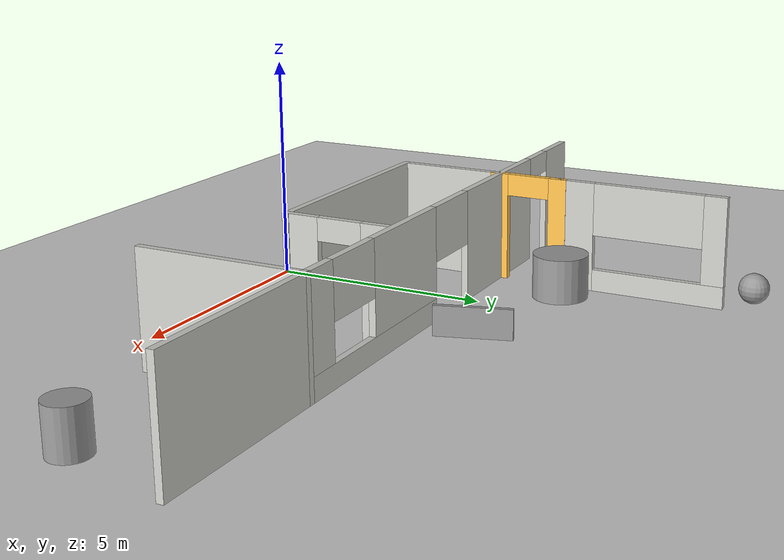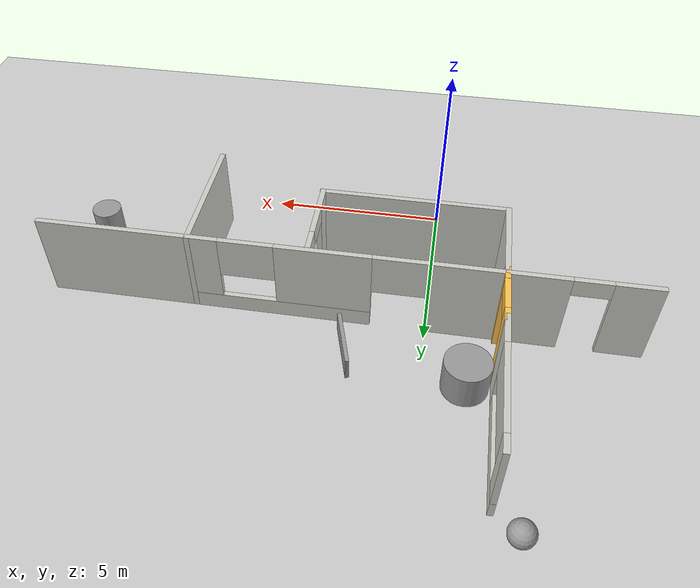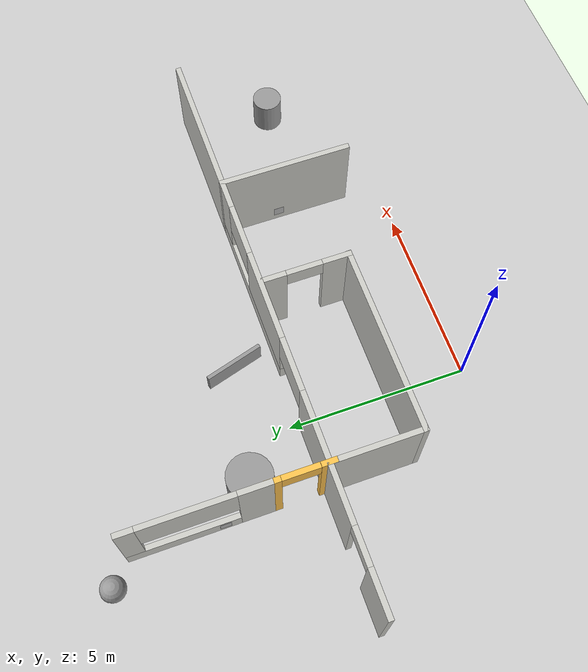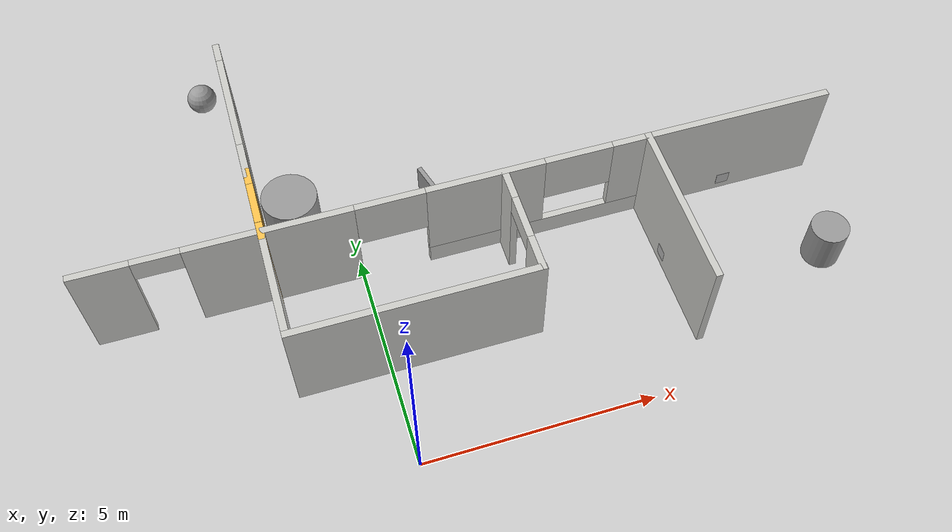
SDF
<sdf version="1.6">
 <world name="default">
  <model name="ground_plane">
   <static>1</static>
   <link name="link">
    <collision name="collision">
     <geometry><plane><normal>0 0 1</normal><size>100 100</size></plane></geometry>
     <surface>
      <contact><collide_bitmask>65535</collide_bitmask></contact>
      <friction><ode><mu>100</mu><mu2>50</mu2></ode></friction>
     </surface>
    </collision>
    <visual name="visual">
     <cast_shadows>0</cast_shadows>
     <geometry><plane><normal>0 0 1</normal><size>100 100</size></plane></geometry>
     <material>
      <script><uri>file://media/materials/scripts/gazebo.material</uri><name>Gazebo/Grey</name></script>
     </material>
    </visual>
   </link>
  </model>
  <model name="Apriltag36_11_00000">
   <link name="main">
    <visual name="main_Visual">
     <geometry><box><size>0.3 0.3 0.01</size></box></geometry>
     <material>
      <script>
       <uri>model://Apriltag36_11_00000/materials/scripts</uri>
       <uri>model://Apriltag36_11_00000/materials/textures</uri>
       <name>Apriltag36_11_00000</name>
      </script>
     </material>
    </visual>
   </link>
   <static>1</static>
   <pose>8.46473 4.57794 0.348215 1.5708 -0 0</pose>
  </model>
  <model name="Apriltag36_11_00004">
   <link name="main">
    <visual name="main_Visual">
     <geometry><box><size>0.3 0.3 0.01</size></box></geometry>
     <material>
      <script>
       <uri>model://Apriltag36_11_00004/materials/scripts</uri>
       <uri>model://Apriltag36_11_00004/materials/textures</uri>
       <name>Apriltag36_11_00004</name>
      </script>
     </material>
    </visual>
   </link>
   <static>1</static>
   <pose>6.34011 3.08655 0.344728 1.5708 0 -1.5708</pose>
  </model>
  <model name="Apriltag36_11_00006">
   <link name="main">
    <visual name="main_Visual">
     <geometry><box><size>0.3 0.3 0.01</size></box></geometry>
     <material>
      <script>
       <uri>model://Apriltag36_11_00006/materials/scripts</uri>
       <uri>model://Apriltag36_11_00006/materials/textures</uri>
       <name>Apriltag36_11_00006</name>
      </script>
     </material>
    </visual>
   </link>
   <static>1</static>
   <pose>-1.99049 7.40747 0.301894 1.5708 0 -1.5708</pose>
  </model>
  <model name="Apriltag36_11_00010">
   <link name="main">
    <visual name="main_Visual">
     <geometry><box><size>0.3 0.3 0.01</size></box></geometry>
     <material>
      <script>
       <uri>model://Apriltag36_11_00010/materials/scripts</uri>
       <uri>model://Apriltag36_11_00010/materials/textures</uri>
       <name>Apriltag36_11_00010</name>
      </script>
     </material>
    </visual>
   </link>
   <static>1</static>
   <pose>-1.82062 2.8418 0.279698 1.5708 -0 1.5708</pose>
  </model>
  <model name="House2">
   <link name="Wall_25">
    <pose>0.49533 1.04331 0 0 -0 0</pose>
    <inertial>
     <mass>1</mass>
     <inertia><ixx>1</ixx><ixy>0</ixy><ixz>0</ixz><iyy>1</iyy><iyz>0</iyz><izz>1</izz></inertia>
    </inertial>
    <visual name="Wall_25_Visual_4">
     <pose>5.67756 0 1.5 0 -0 0</pose>
     <geometry><box><size>0.894875 0.15 2</size></box></geometry>
     <material>
      <script><uri>file://media/materials/scripts/gazebo.material</uri><name>Gazebo/CeilingTiled</name></script>
      <ambient>1 0.765 0.306 1</ambient>
      <shader type="vertex"><normal_map>__default__</normal_map></shader>
      <diffuse>1 1 1 1</diffuse>
      <specular>0 0 0 1</specular>
      <emissive>0 0 0 1</emissive>
     </material>
     <meta><layer>0</layer></meta>
    </visual>
    <visual name="Wall_25_Visual_0">
     <pose>-5.49965 0 1.25 0 -0 0</pose>
     <geometry><box><size>1.25071 0.15 2.5</size></box></geometry>
     <material>
      <script><uri>file://media/materials/scripts/gazebo.material</uri><name>Gazebo/CeilingTiled</name></script>
      <ambient>1 0.765 0.306 1</ambient>
      <shader type="vertex"><normal_map>__default__</normal_map></shader>
      <diffuse>1 1 1 1</diffuse>
      <specular>0 0 0 1</specular>
      <emissive>0 0 0 1</emissive>
     </material>
     <meta><layer>0</layer></meta>
    </visual>
    <visual name="Wall_25_Visual_1">
     <pose>-2.11535 0 1.25 0 -0 0</pose>
     <geometry><box><size>3.51789 0.15 2.5</size></box></geometry>
     <material>
      <script><uri>file://media/materials/scripts/gazebo.material</uri><name>Gazebo/CeilingTiled</name></script>
      <ambient>1 0.765 0.306 1</ambient>
      <shader type="vertex"><normal_map>__default__</normal_map></shader>
      <diffuse>1 1 1 1</diffuse>
      <specular>0 0 0 1</specular>
      <emissive>0 0 0 1</emissive>
     </material>
     <meta><layer>0</layer></meta>
    </visual>
    <visual name="Wall_25_Visual_2">
     <pose>3.62756 0 0.25 0 -0 0</pose>
     <geometry><box><size>4.955 0.15 0.5</size></box></geometry>
     <material>
      <script><uri>file://media/materials/scripts/gazebo.material</uri><name>Gazebo/CeilingTiled</name></script>
      <ambient>1 0.765 0.306 1</ambient>
      <shader type="vertex"><normal_map>__default__</normal_map></shader>
      <diffuse>1 1 1 1</diffuse>
      <specular>0 0 0 1</specular>
      <emissive>0 0 0 1</emissive>
     </material>
     <meta><layer>0</layer></meta>
    </visual>
    <visual name="Wall_25_Visual_3">
     <pose>2.43686 0 1.5 0 -0 0</pose>
     <geometry><box><size>2.58652 0.15 2</size></box></geometry>
     <material>
      <script><uri>file://media/materials/scripts/gazebo.material</uri><name>Gazebo/CeilingTiled</name></script>
      <ambient>1 0.765 0.306 1</ambient>
      <shader type="vertex"><normal_map>__default__</normal_map></shader>
      <diffuse>1 1 1 1</diffuse>
      <specular>0 0 0 1</specular>
      <emissive>0 0 0 1</emissive>
     </material>
     <meta><layer>0</layer></meta>
    </visual>
    <visual name="Wall_25_Visual_5">
     <pose>0.3936 0 1.9 0 -0 0</pose>
     <geometry><box><size>1.5 0.15 1.2</size></box></geometry>
     <material>
      <script><uri>file://media/materials/scripts/gazebo.material</uri><name>Gazebo/CeilingTiled</name></script>
      <ambient>1 0.765 0.306 1</ambient>
      <shader type="vertex"><normal_map>__default__</normal_map></shader>
      <diffuse>1 1 1 1</diffuse>
      <specular>0 0 0 1</specular>
      <emissive>0 0 0 1</emissive>
     </material>
     <meta><layer>0</layer></meta>
    </visual>
    <visual name="Wall_25_Visual_6">
     <pose>4.48013 0 1.9 0 -0 0</pose>
     <geometry><box><size>1.5 0.15 1.2</size></box></geometry>
     <material>
      <script><uri>file://media/materials/scripts/gazebo.material</uri><name>Gazebo/CeilingTiled</name></script>
      <ambient>1 0.765 0.306 1</ambient>
      <shader type="vertex"><normal_map>__default__</normal_map></shader>
      <diffuse>1 1 1 1</diffuse>
      <specular>0 0 0 1</specular>
      <emissive>0 0 0 1</emissive>
     </material>
     <meta><layer>0</layer></meta>
    </visual>
    <visual name="Wall_25_Visual_7">
     <pose>-4.37429 0 2.25 0 -0 0</pose>
     <geometry><box><size>1 0.15 0.5</size></box></geometry>
     <material>
      <script><uri>file://media/materials/scripts/gazebo.material</uri><name>Gazebo/CeilingTiled</name></script>
      <ambient>1 0.765 0.306 1</ambient>
      <shader type="vertex"><normal_map>__default__</normal_map></shader>
      <diffuse>1 1 1 1</diffuse>
      <specular>0 0 0 1</specular>
      <emissive>0 0 0 1</emissive>
     </material>
     <meta><layer>0</layer></meta>
    </visual>
    <collision name="Wall_25_Collision_0">
     <pose>-5.49965 0 1.25 0 -0 0</pose>
     <geometry><box><size>1.25071 0.15 2.5</size></box></geometry>
     <surface>
      <friction>
       <ode><mu>1</mu><mu2>1</mu2><fdir1>0 0 0</fdir1><slip1>0</slip1><slip2>0</slip2></ode>
       <torsional>
        <coefficient>1</coefficient>
        <patch_radius>0</patch_radius>
        <surface_radius>0</surface_radius>
        <use_patch_radius>1</use_patch_radius>
        <ode><slip>0</slip></ode>
       </torsional>
      </friction>
      <bounce><restitution_coefficient>0</restitution_coefficient><threshold>1e+06</threshold></bounce>
      <contact>
       <collide_without_contact>0</collide_without_contact>
       <collide_without_contact_bitmask>1</collide_without_contact_bitmask>
       <collide_bitmask>1</collide_bitmask>
       <ode>
        <soft_cfm>0</soft_cfm>
        <soft_erp>0.2</soft_erp>
        <kp>1e+13</kp>
        <kd>1</kd>
        <max_vel>0.01</max_vel>
        <min_depth>0</min_depth>
       </ode>
       <bullet>
        <split_impulse>1</split_impulse>
        <split_impulse_penetration_threshold>-0.01</split_impulse_penetration_threshold>
        <soft_cfm>0</soft_cfm>
        <soft_erp>0.2</soft_erp>
        <kp>1e+13</kp>
        <kd>1</kd>
       </bullet>
      </contact>
     </surface>
    </collision>
    <collision name="Wall_25_Collision_1">
     <pose>-2.11535 0 1.25 0 -0 0</pose>
     <geometry><box><size>3.51789 0.15 2.5</size></box></geometry>
     <surface>
      <friction>
       <ode><mu>1</mu><mu2>1</mu2><fdir1>0 0 0</fdir1><slip1>0</slip1><slip2>0</slip2></ode>
       <torsional>
        <coefficient>1</coefficient>
        <patch_radius>0</patch_radius>
        <surface_radius>0</surface_radius>
        <use_patch_radius>1</use_patch_radius>
        <ode><slip>0</slip></ode>
       </torsional>
      </friction>
      <bounce><restitution_coefficient>0</restitution_coefficient><threshold>1e+06</threshold></bounce>
      <contact>
       <collide_without_contact>0</collide_without_contact>
       <collide_without_contact_bitmask>1</collide_without_contact_bitmask>
       <collide_bitmask>1</collide_bitmask>
       <ode>
        <soft_cfm>0</soft_cfm>
        <soft_erp>0.2</soft_erp>
        <kp>1e+13</kp>
        <kd>1</kd>
        <max_vel>0.01</max_vel>
        <min_depth>0</min_depth>
       </ode>
       <bullet>
        <split_impulse>1</split_impulse>
        <split_impulse_penetration_threshold>-0.01</split_impulse_penetration_threshold>
        <soft_cfm>0</soft_cfm>
        <soft_erp>0.2</soft_erp>
        <kp>1e+13</kp>
        <kd>1</kd>
       </bullet>
      </contact>
     </surface>
    </collision>
    <collision name="Wall_25_Collision_2">
     <pose>3.62756 0 0.25 0 -0 0</pose>
     <geometry><box><size>4.955 0.15 0.5</size></box></geometry>
     <surface>
      <friction>
       <ode><mu>1</mu><mu2>1</mu2><fdir1>0 0 0</fdir1><slip1>0</slip1><slip2>0</slip2></ode>
       <torsional>
        <coefficient>1</coefficient>
        <patch_radius>0</patch_radius>
        <surface_radius>0</surface_radius>
        <use_patch_radius>1</use_patch_radius>
        <ode><slip>0</slip></ode>
       </torsional>
      </friction>
      <bounce><restitution_coefficient>0</restitution_coefficient><threshold>1e+06</threshold></bounce>
      <contact>
       <collide_without_contact>0</collide_without_contact>
       <collide_without_contact_bitmask>1</collide_without_contact_bitmask>
       <collide_bitmask>1</collide_bitmask>
       <ode>
        <soft_cfm>0</soft_cfm>
        <soft_erp>0.2</soft_erp>
        <kp>1e+13</kp>
        <kd>1</kd>
        <max_vel>0.01</max_vel>
        <min_depth>0</min_depth>
       </ode>
       <bullet>
        <split_impulse>1</split_impulse>
        <split_impulse_penetration_threshold>-0.01</split_impulse_penetration_threshold>
        <soft_cfm>0</soft_cfm>
        <soft_erp>0.2</soft_erp>
        <kp>1e+13</kp>
        <kd>1</kd>
       </bullet>
      </contact>
     </surface>
    </collision>
    <collision name="Wall_25_Collision_3">
     <pose>2.43686 0 1.5 0 -0 0</pose>
     <geometry><box><size>2.58652 0.15 2</size></box></geometry>
     <surface>
      <friction>
       <ode><mu>1</mu><mu2>1</mu2><fdir1>0 0 0</fdir1><slip1>0</slip1><slip2>0</slip2></ode>
       <torsional>
        <coefficient>1</coefficient>
        <patch_radius>0</patch_radius>
        <surface_radius>0</surface_radius>
        <use_patch_radius>1</use_patch_radius>
        <ode><slip>0</slip></ode>
       </torsional>
      </friction>
      <bounce><restitution_coefficient>0</restitution_coefficient><threshold>1e+06</threshold></bounce>
      <contact>
       <collide_without_contact>0</collide_without_contact>
       <collide_without_contact_bitmask>1</collide_without_contact_bitmask>
       <collide_bitmask>1</collide_bitmask>
       <ode>
        <soft_cfm>0</soft_cfm>
        <soft_erp>0.2</soft_erp>
        <kp>1e+13</kp>
        <kd>1</kd>
        <max_vel>0.01</max_vel>
        <min_depth>0</min_depth>
       </ode>
       <bullet>
        <split_impulse>1</split_impulse>
        <split_impulse_penetration_threshold>-0.01</split_impulse_penetration_threshold>
        <soft_cfm>0</soft_cfm>
        <soft_erp>0.2</soft_erp>
        <kp>1e+13</kp>
        <kd>1</kd>
       </bullet>
      </contact>
     </surface>
    </collision>
    <collision name="Wall_25_Collision_5">
     <pose>0.3936 0 1.9 0 -0 0</pose>
     <geometry><box><size>1.5 0.15 1.2</size></box></geometry>
     <surface>
      <friction>
       <ode><mu>1</mu><mu2>1</mu2><fdir1>0 0 0</fdir1><slip1>0</slip1><slip2>0</slip2></ode>
       <torsional>
        <coefficient>1</coefficient>
        <patch_radius>0</patch_radius>
        <surface_radius>0</surface_radius>
        <use_patch_radius>1</use_patch_radius>
        <ode><slip>0</slip></ode>
       </torsional>
      </friction>
      <bounce><restitution_coefficient>0</restitution_coefficient><threshold>1e+06</threshold></bounce>
      <contact>
       <collide_without_contact>0</collide_without_contact>
       <collide_without_contact_bitmask>1</collide_without_contact_bitmask>
       <collide_bitmask>1</collide_bitmask>
       <ode>
        <soft_cfm>0</soft_cfm>
        <soft_erp>0.2</soft_erp>
        <kp>1e+13</kp>
        <kd>1</kd>
        <max_vel>0.01</max_vel>
        <min_depth>0</min_depth>
       </ode>
       <bullet>
        <split_impulse>1</split_impulse>
        <split_impulse_penetration_threshold>-0.01</split_impulse_penetration_threshold>
        <soft_cfm>0</soft_cfm>
        <soft_erp>0.2</soft_erp>
        <kp>1e+13</kp>
        <kd>1</kd>
       </bullet>
      </contact>
     </surface>
    </collision>
    <collision name="Wall_25_Collision_4">
     <pose>5.67756 0 1.5 0 -0 0</pose>
     <geometry><box><size>0.894875 0.15 2</size></box></geometry>
     <surface>
      <friction>
       <ode><mu>1</mu><mu2>1</mu2><fdir1>0 0 0</fdir1><slip1>0</slip1><slip2>0</slip2></ode>
       <torsional>
        <coefficient>1</coefficient>
        <patch_radius>0</patch_radius>
        <surface_radius>0</surface_radius>
        <use_patch_radius>1</use_patch_radius>
        <ode><slip>0</slip></ode>
       </torsional>
      </friction>
      <bounce><restitution_coefficient>0</restitution_coefficient><threshold>1e+06</threshold></bounce>
      <contact>
       <collide_without_contact>0</collide_without_contact>
       <collide_without_contact_bitmask>1</collide_without_contact_bitmask>
       <collide_bitmask>1</collide_bitmask>
       <ode>
        <soft_cfm>0</soft_cfm>
        <soft_erp>0.2</soft_erp>
        <kp>1e+13</kp>
        <kd>1</kd>
        <max_vel>0.01</max_vel>
        <min_depth>0</min_depth>
       </ode>
       <bullet>
        <split_impulse>1</split_impulse>
        <split_impulse_penetration_threshold>-0.01</split_impulse_penetration_threshold>
        <soft_cfm>0</soft_cfm>
        <soft_erp>0.2</soft_erp>
        <kp>1e+13</kp>
        <kd>1</kd>
       </bullet>
      </contact>
     </surface>
    </collision>
    <collision name="Wall_25_Collision_6">
     <pose>4.48013 0 1.9 0 -0 0</pose>
     <geometry><box><size>1.5 0.15 1.2</size></box></geometry>
     <surface>
      <friction>
       <ode><mu>1</mu><mu2>1</mu2><fdir1>0 0 0</fdir1><slip1>0</slip1><slip2>0</slip2></ode>
       <torsional>
        <coefficient>1</coefficient>
        <patch_radius>0</patch_radius>
        <surface_radius>0</surface_radius>
        <use_patch_radius>1</use_patch_radius>
        <ode><slip>0</slip></ode>
       </torsional>
      </friction>
      <bounce><restitution_coefficient>0</restitution_coefficient><threshold>1e+06</threshold></bounce>
      <contact>
       <collide_without_contact>0</collide_without_contact>
       <collide_without_contact_bitmask>1</collide_without_contact_bitmask>
       <collide_bitmask>1</collide_bitmask>
       <ode>
        <soft_cfm>0</soft_cfm>
        <soft_erp>0.2</soft_erp>
        <kp>1e+13</kp>
        <kd>1</kd>
        <max_vel>0.01</max_vel>
        <min_depth>0</min_depth>
       </ode>
       <bullet>
        <split_impulse>1</split_impulse>
        <split_impulse_penetration_threshold>-0.01</split_impulse_penetration_threshold>
        <soft_cfm>0</soft_cfm>
        <soft_erp>0.2</soft_erp>
        <kp>1e+13</kp>
        <kd>1</kd>
       </bullet>
      </contact>
     </surface>
    </collision>
    <collision name="Wall_25_Collision_7">
     <pose>-4.37429 0 2.25 0 -0 0</pose>
     <geometry><box><size>1 0.15 0.5</size></box></geometry>
     <surface>
      <friction>
       <ode><mu>1</mu><mu2>1</mu2><fdir1>0 0 0</fdir1><slip1>0</slip1><slip2>0</slip2></ode>
       <torsional>
        <coefficient>1</coefficient>
        <patch_radius>0</patch_radius>
        <surface_radius>0</surface_radius>
        <use_patch_radius>1</use_patch_radius>
        <ode><slip>0</slip></ode>
       </torsional>
      </friction>
      <bounce><restitution_coefficient>0</restitution_coefficient><threshold>1e+06</threshold></bounce>
      <contact>
       <collide_without_contact>0</collide_without_contact>
       <collide_without_contact_bitmask>1</collide_without_contact_bitmask>
       <collide_bitmask>1</collide_bitmask>
       <ode>
        <soft_cfm>0</soft_cfm>
        <soft_erp>0.2</soft_erp>
        <kp>1e+13</kp>
        <kd>1</kd>
        <max_vel>0.01</max_vel>
        <min_depth>0</min_depth>
       </ode>
       <bullet>
        <split_impulse>1</split_impulse>
        <split_impulse_penetration_threshold>-0.01</split_impulse_penetration_threshold>
        <soft_cfm>0</soft_cfm>
        <soft_erp>0.2</soft_erp>
        <kp>1e+13</kp>
        <kd>1</kd>
       </bullet>
      </contact>
     </surface>
    </collision>
   </link>
   <link name="Wall_28">
    <pose>-1.77527 -0.238367 0 0 -0 1.5708</pose>
    <visual name="Wall_28_Visual">
     <pose>0 0 1.25 0 -0 0</pose>
     <geometry><box><size>2.5 0.15 2.5</size></box></geometry>
     <material>
      <script><uri>file://media/materials/scripts/gazebo.material</uri><name>Gazebo/CeilingTiled</name></script>
      <ambient>1 0.764706 0.305882 1</ambient>
     </material>
     <meta><layer>0</layer></meta>
    </visual>
    <collision name="Wall_28_Collision">
     <pose>0 0 1.25 0 -0 0</pose>
     <geometry><box><size>2.5 0.15 2.5</size></box></geometry>
     <surface>
      <friction>
       <ode><mu>1</mu><mu2>1</mu2><fdir1>0 0 0</fdir1><slip1>0</slip1><slip2>0</slip2></ode>
       <torsional>
        <coefficient>1</coefficient>
        <patch_radius>0</patch_radius>
        <surface_radius>0</surface_radius>
        <use_patch_radius>1</use_patch_radius>
        <ode><slip>0</slip></ode>
       </torsional>
      </friction>
      <bounce><restitution_coefficient>0</restitution_coefficient><threshold>1e+06</threshold></bounce>
      <contact>
       <collide_without_contact>0</collide_without_contact>
       <collide_without_contact_bitmask>1</collide_without_contact_bitmask>
       <collide_bitmask>1</collide_bitmask>
       <ode>
        <soft_cfm>0</soft_cfm>
        <soft_erp>0.2</soft_erp>
        <kp>1e+13</kp>
        <kd>1</kd>
        <max_vel>0.01</max_vel>
        <min_depth>0</min_depth>
       </ode>
       <bullet>
        <split_impulse>1</split_impulse>
        <split_impulse_penetration_threshold>-0.01</split_impulse_penetration_threshold>
        <soft_cfm>0</soft_cfm>
        <soft_erp>0.2</soft_erp>
        <kp>1e+13</kp>
        <kd>1</kd>
       </bullet>
      </contact>
     </surface>
    </collision>
   </link>
   <link name="Wall_32">
    <pose>0.787951 -1.41337 0 0 -0 0</pose>
    <visual name="Wall_32_Visual">
     <pose>0 0 1.25 0 -0 0</pose>
     <geometry><box><size>5.27645 0.15 2.5</size></box></geometry>
     <material>
      <script><uri>file://media/materials/scripts/gazebo.material</uri><name>Gazebo/CeilingTiled</name></script>
      <ambient>1 0.764706 0.305882 1</ambient>
     </material>
     <meta><layer>0</layer></meta>
    </visual>
    <collision name="Wall_32_Collision">
     <pose>0 0 1.25 0 -0 0</pose>
     <geometry><box><size>5.27645 0.15 2.5</size></box></geometry>
     <surface>
      <friction>
       <ode><mu>1</mu><mu2>1</mu2><fdir1>0 0 0</fdir1><slip1>0</slip1><slip2>0</slip2></ode>
       <torsional>
        <coefficient>1</coefficient>
        <patch_radius>0</patch_radius>
        <surface_radius>0</surface_radius>
        <use_patch_radius>1</use_patch_radius>
        <ode><slip>0</slip></ode>
       </torsional>
      </friction>
      <bounce><restitution_coefficient>0</restitution_coefficient><threshold>1e+06</threshold></bounce>
      <contact>
       <collide_without_contact>0</collide_without_contact>
       <collide_without_contact_bitmask>1</collide_without_contact_bitmask>
       <collide_bitmask>1</collide_bitmask>
       <ode>
        <soft_cfm>0</soft_cfm>
        <soft_erp>0.2</soft_erp>
        <kp>1e+13</kp>
        <kd>1</kd>
        <max_vel>0.01</max_vel>
        <min_depth>0</min_depth>
       </ode>
       <bullet>
        <split_impulse>1</split_impulse>
        <split_impulse_penetration_threshold>-0.01</split_impulse_penetration_threshold>
        <soft_cfm>0</soft_cfm>
        <soft_erp>0.2</soft_erp>
        <kp>1e+13</kp>
        <kd>1</kd>
       </bullet>
      </contact>
     </surface>
    </collision>
   </link>
   <link name="Wall_33">
    <pose>3.33795 -0.238367 0 0 -0 1.5708</pose>
    <visual name="Wall_33_Visual_0">
     <pose>-0.837935 0 1.25 0 -0 0</pose>
     <geometry><box><size>0.824129 0.15 2.5</size></box></geometry>
     <material>
      <script><uri>file://media/materials/scripts/gazebo.material</uri><name>Gazebo/CeilingTiled</name></script>
      <ambient>1 0.764706 0.305882 1</ambient>
     </material>
     <meta><layer>0</layer></meta>
    </visual>
    <visual name="Wall_33_Visual_1">
     <pose>0.912065 0 1.25 0 -0 0</pose>
     <geometry><box><size>0.675871 0.15 2.5</size></box></geometry>
     <material>
      <script><uri>file://media/materials/scripts/gazebo.material</uri><name>Gazebo/CeilingTiled</name></script>
      <ambient>1 0.764706 0.305882 1</ambient>
     </material>
     <meta><layer>0</layer></meta>
    </visual>
    <visual name="Wall_33_Visual_2">
     <pose>0.074129 0 2.25 0 -0 0</pose>
     <geometry><box><size>1 0.15 0.5</size></box></geometry>
     <material>
      <script><uri>file://media/materials/scripts/gazebo.material</uri><name>Gazebo/CeilingTiled</name></script>
      <ambient>1 0.764706 0.305882 1</ambient>
     </material>
     <meta><layer>0</layer></meta>
    </visual>
    <collision name="Wall_33_Collision_0">
     <pose>-0.837935 0 1.25 0 -0 0</pose>
     <geometry><box><size>0.824129 0.15 2.5</size></box></geometry>
     <surface>
      <friction>
       <ode><mu>1</mu><mu2>1</mu2><fdir1>0 0 0</fdir1><slip1>0</slip1><slip2>0</slip2></ode>
       <torsional>
        <coefficient>1</coefficient>
        <patch_radius>0</patch_radius>
        <surface_radius>0</surface_radius>
        <use_patch_radius>1</use_patch_radius>
        <ode><slip>0</slip></ode>
       </torsional>
      </friction>
      <bounce><restitution_coefficient>0</restitution_coefficient><threshold>1e+06</threshold></bounce>
      <contact>
       <collide_without_contact>0</collide_without_contact>
       <collide_without_contact_bitmask>1</collide_without_contact_bitmask>
       <collide_bitmask>1</collide_bitmask>
       <ode>
        <soft_cfm>0</soft_cfm>
        <soft_erp>0.2</soft_erp>
        <kp>1e+13</kp>
        <kd>1</kd>
        <max_vel>0.01</max_vel>
        <min_depth>0</min_depth>
       </ode>
       <bullet>
        <split_impulse>1</split_impulse>
        <split_impulse_penetration_threshold>-0.01</split_impulse_penetration_threshold>
        <soft_cfm>0</soft_cfm>
        <soft_erp>0.2</soft_erp>
        <kp>1e+13</kp>
        <kd>1</kd>
       </bullet>
      </contact>
     </surface>
    </collision>
    <collision name="Wall_33_Collision_1">
     <pose>0.912065 0 1.25 0 -0 0</pose>
     <geometry><box><size>0.675871 0.15 2.5</size></box></geometry>
     <surface>
      <friction>
       <ode><mu>1</mu><mu2>1</mu2><fdir1>0 0 0</fdir1><slip1>0</slip1><slip2>0</slip2></ode>
       <torsional>
        <coefficient>1</coefficient>
        <patch_radius>0</patch_radius>
        <surface_radius>0</surface_radius>
        <use_patch_radius>1</use_patch_radius>
        <ode><slip>0</slip></ode>
       </torsional>
      </friction>
      <bounce><restitution_coefficient>0</restitution_coefficient><threshold>1e+06</threshold></bounce>
      <contact>
       <collide_without_contact>0</collide_without_contact>
       <collide_without_contact_bitmask>1</collide_without_contact_bitmask>
       <collide_bitmask>1</collide_bitmask>
       <ode>
        <soft_cfm>0</soft_cfm>
        <soft_erp>0.2</soft_erp>
        <kp>1e+13</kp>
        <kd>1</kd>
        <max_vel>0.01</max_vel>
        <min_depth>0</min_depth>
       </ode>
       <bullet>
        <split_impulse>1</split_impulse>
        <split_impulse_penetration_threshold>-0.01</split_impulse_penetration_threshold>
        <soft_cfm>0</soft_cfm>
        <soft_erp>0.2</soft_erp>
        <kp>1e+13</kp>
        <kd>1</kd>
       </bullet>
      </contact>
     </surface>
    </collision>
    <collision name="Wall_33_Collision_2">
     <pose>0.074129 0 2.25 0 -0 0</pose>
     <geometry><box><size>1 0.15 0.5</size></box></geometry>
     <surface>
      <friction>
       <ode><mu>1</mu><mu2>1</mu2><fdir1>0 0 0</fdir1><slip1>0</slip1><slip2>0</slip2></ode>
       <torsional>
        <coefficient>1</coefficient>
        <patch_radius>0</patch_radius>
        <surface_radius>0</surface_radius>
        <use_patch_radius>1</use_patch_radius>
        <ode><slip>0</slip></ode>
       </torsional>
      </friction>
      <bounce><restitution_coefficient>0</restitution_coefficient><threshold>1e+06</threshold></bounce>
      <contact>
       <collide_without_contact>0</collide_without_contact>
       <collide_without_contact_bitmask>1</collide_without_contact_bitmask>
       <collide_bitmask>1</collide_bitmask>
       <ode>
        <soft_cfm>0</soft_cfm>
        <soft_erp>0.2</soft_erp>
        <kp>1e+13</kp>
        <kd>1</kd>
        <max_vel>0.01</max_vel>
        <min_depth>0</min_depth>
       </ode>
       <bullet>
        <split_impulse>1</split_impulse>
        <split_impulse_penetration_threshold>-0.01</split_impulse_penetration_threshold>
        <soft_cfm>0</soft_cfm>
        <soft_erp>0.2</soft_erp>
        <kp>1e+13</kp>
        <kd>1</kd>
       </bullet>
      </contact>
     </surface>
    </collision>
   </link>
   <link name="Wall_35">
    <pose>6.54533 -0.756688 0 0 0 -1.5708</pose>
    <visual name="Wall_35_Visual">
     <pose>0 0 1.25 0 -0 0</pose>
     <geometry><box><size>3.75 0.15 2.5</size></box></geometry>
     <material>
      <script><uri>file://media/materials/scripts/gazebo.material</uri><name>Gazebo/CeilingTiled</name></script>
      <ambient>1 0.764706 0.305882 1</ambient>
     </material>
     <meta><layer>0</layer></meta>
    </visual>
    <collision name="Wall_35_Collision">
     <pose>0 0 1.25 0 -0 0</pose>
     <geometry><box><size>3.75 0.15 2.5</size></box></geometry>
     <surface>
      <friction>
       <ode><mu>1</mu><mu2>1</mu2><fdir1>0 0 0</fdir1><slip1>0</slip1><slip2>0</slip2></ode>
       <torsional>
        <coefficient>1</coefficient>
        <patch_radius>0</patch_radius>
        <surface_radius>0</surface_radius>
        <use_patch_radius>1</use_patch_radius>
        <ode><slip>0</slip></ode>
       </torsional>
      </friction>
      <bounce><restitution_coefficient>0</restitution_coefficient><threshold>1e+06</threshold></bounce>
      <contact>
       <collide_without_contact>0</collide_without_contact>
       <collide_without_contact_bitmask>1</collide_without_contact_bitmask>
       <collide_bitmask>1</collide_bitmask>
       <ode>
        <soft_cfm>0</soft_cfm>
        <soft_erp>0.2</soft_erp>
        <kp>1e+13</kp>
        <kd>1</kd>
        <max_vel>0.01</max_vel>
        <min_depth>0</min_depth>
       </ode>
       <bullet>
        <split_impulse>1</split_impulse>
        <split_impulse_penetration_threshold>-0.01</split_impulse_penetration_threshold>
        <soft_cfm>0</soft_cfm>
        <soft_erp>0.2</soft_erp>
        <kp>1e+13</kp>
        <kd>1</kd>
       </bullet>
      </contact>
     </surface>
    </collision>
   </link>
   <link name="Wall_38">
    <pose>8.59533 1.04331 0 0 -0 0</pose>
    <visual name="Wall_38_Visual">
     <pose>0 0 1.25 0 -0 0</pose>
     <geometry><box><size>4.25 0.15 2.5</size></box></geometry>
     <material>
      <script><uri>file://media/materials/scripts/gazebo.material</uri><name>Gazebo/CeilingTiled</name></script>
      <ambient>1 0.764706 0.305882 1</ambient>
     </material>
     <meta><layer>0</layer></meta>
    </visual>
    <collision name="Wall_38_Collision">
     <pose>0 0 1.25 0 -0 0</pose>
     <geometry><box><size>4.25 0.15 2.5</size></box></geometry>
     <surface>
      <friction>
       <ode><mu>1</mu><mu2>1</mu2><fdir1>0 0 0</fdir1><slip1>0</slip1><slip2>0</slip2></ode>
       <torsional>
        <coefficient>1</coefficient>
        <patch_radius>0</patch_radius>
        <surface_radius>0</surface_radius>
        <use_patch_radius>1</use_patch_radius>
        <ode><slip>0</slip></ode>
       </torsional>
      </friction>
      <bounce><restitution_coefficient>0</restitution_coefficient><threshold>1e+06</threshold></bounce>
      <contact>
       <collide_without_contact>0</collide_without_contact>
       <collide_without_contact_bitmask>1</collide_without_contact_bitmask>
       <collide_bitmask>1</collide_bitmask>
       <ode>
        <soft_cfm>0</soft_cfm>
        <soft_erp>0.2</soft_erp>
        <kp>1e+13</kp>
        <kd>1</kd>
        <max_vel>0.01</max_vel>
        <min_depth>0</min_depth>
       </ode>
       <bullet>
        <split_impulse>1</split_impulse>
        <split_impulse_penetration_threshold>-0.01</split_impulse_penetration_threshold>
        <soft_cfm>0</soft_cfm>
        <soft_erp>0.2</soft_erp>
        <kp>1e+13</kp>
        <kd>1</kd>
       </bullet>
      </contact>
     </surface>
    </collision>
   </link>
   <link name="Wall_48">
    <pose>-1.77527 3.61163 0 0 -0 1.5708</pose>
    <inertial>
     <mass>1</mass>
     <inertia><ixx>1</ixx><ixy>0</ixy><ixz>0</ixz><iyy>1</iyy><iyz>0</iyz><izz>1</izz></inertia>
    </inertial>
    <visual name="Wall_48_Visual_0">
     <pose>-0.71 0 1.25 0 -0 0</pose>
     <geometry><box><size>0.9 0.15 2.5</size></box></geometry>
     <material>
      <script><uri>file://media/materials/scripts/gazebo.material</uri><name>Gazebo/CeilingTiled</name></script>
      <ambient>1 0.765 0.306 1</ambient>
      <shader type="vertex"><normal_map>__default__</normal_map></shader>
      <diffuse>1 1 1 1</diffuse>
      <specular>0 0 0 1</specular>
      <emissive>0 0 0 1</emissive>
     </material>
     <meta><layer>0</layer></meta>
    </visual>
    <visual name="Wall_48_Visual_1">
     <pose>1.24443 0 0.25 0 -0 0</pose>
     <geometry><box><size>3.01114 0.15 0.5</size></box></geometry>
     <material>
      <script><uri>file://media/materials/scripts/gazebo.material</uri><name>Gazebo/CeilingTiled</name></script>
      <ambient>1 0.765 0.306 1</ambient>
      <shader type="vertex"><normal_map>__default__</normal_map></shader>
      <diffuse>1 1 1 1</diffuse>
      <specular>0 0 0 1</specular>
      <emissive>0 0 0 1</emissive>
     </material>
     <meta><layer>0</layer></meta>
    </visual>
    <visual name="Wall_48_Visual_2">
     <pose>2.49443 0 1.5 0 -0 0</pose>
     <geometry><box><size>0.511141 0.15 2</size></box></geometry>
     <material>
      <script><uri>file://media/materials/scripts/gazebo.material</uri><name>Gazebo/CeilingTiled</name></script>
      <ambient>1 0.765 0.306 1</ambient>
      <shader type="vertex"><normal_map>__default__</normal_map></shader>
      <diffuse>1 1 1 1</diffuse>
      <specular>0 0 0 1</specular>
      <emissive>0 0 0 1</emissive>
     </material>
     <meta><layer>0</layer></meta>
    </visual>
    <visual name="Wall_48_Visual_3">
     <pose>0.988859 0 1.9 0 -0 0</pose>
     <geometry><box><size>2.5 0.15 1.2</size></box></geometry>
     <material>
      <script><uri>file://media/materials/scripts/gazebo.material</uri><name>Gazebo/CeilingTiled</name></script>
      <ambient>1 0.765 0.306 1</ambient>
      <shader type="vertex"><normal_map>__default__</normal_map></shader>
      <diffuse>1 1 1 1</diffuse>
      <specular>0 0 0 1</specular>
      <emissive>0 0 0 1</emissive>
     </material>
     <meta><layer>0</layer></meta>
    </visual>
    <collision name="Wall_48_Collision_2">
     <pose>2.49443 0 1.5 0 -0 0</pose>
     <geometry><box><size>0.511141 0.15 2</size></box></geometry>
     <surface>
      <friction>
       <ode><mu>1</mu><mu2>1</mu2><fdir1>0 0 0</fdir1><slip1>0</slip1><slip2>0</slip2></ode>
       <torsional>
        <coefficient>1</coefficient>
        <patch_radius>0</patch_radius>
        <surface_radius>0</surface_radius>
        <use_patch_radius>1</use_patch_radius>
        <ode><slip>0</slip></ode>
       </torsional>
      </friction>
      <bounce><restitution_coefficient>0</restitution_coefficient><threshold>1e+06</threshold></bounce>
      <contact>
       <collide_without_contact>0</collide_without_contact>
       <collide_without_contact_bitmask>1</collide_without_contact_bitmask>
       <collide_bitmask>1</collide_bitmask>
       <ode>
        <soft_cfm>0</soft_cfm>
        <soft_erp>0.2</soft_erp>
        <kp>1e+13</kp>
        <kd>1</kd>
        <max_vel>0.01</max_vel>
        <min_depth>0</min_depth>
       </ode>
       <bullet>
        <split_impulse>1</split_impulse>
        <split_impulse_penetration_threshold>-0.01</split_impulse_penetration_threshold>
        <soft_cfm>0</soft_cfm>
        <soft_erp>0.2</soft_erp>
        <kp>1e+13</kp>
        <kd>1</kd>
       </bullet>
      </contact>
     </surface>
    </collision>
    <collision name="Wall_48_Collision_0">
     <pose>-0.71 0 1.25 0 -0 0</pose>
     <geometry><box><size>0.9 0.15 2.5</size></box></geometry>
     <surface>
      <friction>
       <ode><mu>1</mu><mu2>1</mu2><fdir1>0 0 0</fdir1><slip1>0</slip1><slip2>0</slip2></ode>
       <torsional>
        <coefficient>1</coefficient>
        <patch_radius>0</patch_radius>
        <surface_radius>0</surface_radius>
        <use_patch_radius>1</use_patch_radius>
        <ode><slip>0</slip></ode>
       </torsional>
      </friction>
      <bounce><restitution_coefficient>0</restitution_coefficient><threshold>1e+06</threshold></bounce>
      <contact>
       <collide_without_contact>0</collide_without_contact>
       <collide_without_contact_bitmask>1</collide_without_contact_bitmask>
       <collide_bitmask>1</collide_bitmask>
       <ode>
        <soft_cfm>0</soft_cfm>
        <soft_erp>0.2</soft_erp>
        <kp>1e+13</kp>
        <kd>1</kd>
        <max_vel>0.01</max_vel>
        <min_depth>0</min_depth>
       </ode>
       <bullet>
        <split_impulse>1</split_impulse>
        <split_impulse_penetration_threshold>-0.01</split_impulse_penetration_threshold>
        <soft_cfm>0</soft_cfm>
        <soft_erp>0.2</soft_erp>
        <kp>1e+13</kp>
        <kd>1</kd>
       </bullet>
      </contact>
     </surface>
    </collision>
    <collision name="Wall_48_Collision_1">
     <pose>1.24443 0 0.25 0 -0 0</pose>
     <geometry><box><size>3.01114 0.15 0.5</size></box></geometry>
     <surface>
      <friction>
       <ode><mu>1</mu><mu2>1</mu2><fdir1>0 0 0</fdir1><slip1>0</slip1><slip2>0</slip2></ode>
       <torsional>
        <coefficient>1</coefficient>
        <patch_radius>0</patch_radius>
        <surface_radius>0</surface_radius>
        <use_patch_radius>1</use_patch_radius>
        <ode><slip>0</slip></ode>
       </torsional>
      </friction>
      <bounce><restitution_coefficient>0</restitution_coefficient><threshold>1e+06</threshold></bounce>
      <contact>
       <collide_without_contact>0</collide_without_contact>
       <collide_without_contact_bitmask>1</collide_without_contact_bitmask>
       <collide_bitmask>1</collide_bitmask>
       <ode>
        <soft_cfm>0</soft_cfm>
        <soft_erp>0.2</soft_erp>
        <kp>1e+13</kp>
        <kd>1</kd>
        <max_vel>0.01</max_vel>
        <min_depth>0</min_depth>
       </ode>
       <bullet>
        <split_impulse>1</split_impulse>
        <split_impulse_penetration_threshold>-0.01</split_impulse_penetration_threshold>
        <soft_cfm>0</soft_cfm>
        <soft_erp>0.2</soft_erp>
        <kp>1e+13</kp>
        <kd>1</kd>
       </bullet>
      </contact>
     </surface>
    </collision>
    <collision name="Wall_48_Collision_3">
     <pose>0.988859 0 1.9 0 -0 0</pose>
     <geometry><box><size>2.5 0.15 1.2</size></box></geometry>
     <surface>
      <friction>
       <ode><mu>1</mu><mu2>1</mu2><fdir1>0 0 0</fdir1><slip1>0</slip1><slip2>0</slip2></ode>
       <torsional>
        <coefficient>1</coefficient>
        <patch_radius>0</patch_radius>
        <surface_radius>0</surface_radius>
        <use_patch_radius>1</use_patch_radius>
        <ode><slip>0</slip></ode>
       </torsional>
      </friction>
      <bounce><restitution_coefficient>0</restitution_coefficient><threshold>1e+06</threshold></bounce>
      <contact>
       <collide_without_contact>0</collide_without_contact>
       <collide_without_contact_bitmask>1</collide_without_contact_bitmask>
       <collide_bitmask>1</collide_bitmask>
       <ode>
        <soft_cfm>0</soft_cfm>
        <soft_erp>0.2</soft_erp>
        <kp>1e+13</kp>
        <kd>1</kd>
        <max_vel>0.01</max_vel>
        <min_depth>0</min_depth>
       </ode>
       <bullet>
        <split_impulse>1</split_impulse>
        <split_impulse_penetration_threshold>-0.01</split_impulse_penetration_threshold>
        <soft_cfm>0</soft_cfm>
        <soft_erp>0.2</soft_erp>
        <kp>1e+13</kp>
        <kd>1</kd>
       </bullet>
      </contact>
     </surface>
    </collision>
   </link>
   <link name="Wall_63_clone">
    <pose>-1.77299 1.58155 0 0 -0 1.5708</pose>
    <inertial>
     <mass>1</mass>
     <inertia><ixx>1</ixx><ixy>0</ixy><ixz>0</ixz><iyy>1</iyy><iyz>0</iyz><izz>1</izz></inertia>
    </inertial>
    <visual name="Wall_63_Visual_2">
     <pose>0.185 0 2.25 0 -0 0</pose>
     <geometry><box><size>1 0.15 0.5</size></box></geometry>
     <material>
      <script><uri>file://media/materials/scripts/gazebo.material</uri><name>Gazebo/Grey</name></script>
      <ambient>1 0.765 0.306 1</ambient>
      <shader type="pixel"><normal_map>__default__</normal_map></shader>
      <diffuse>0.7 0.7 0.7 1</diffuse>
      <specular>0.01 0.01 0.01 1</specular>
      <emissive>0 0 0 1</emissive>
     </material>
     <meta><layer>0</layer></meta>
    </visual>
    <visual name="Wall_63_Visual_1">
     <pose>0.8875 0 1.25 0 -0 0</pose>
     <geometry><box><size>0.425 0.15 2.5</size></box></geometry>
     <material>
      <script><uri>file://media/materials/scripts/gazebo.material</uri><name>Gazebo/Grey</name></script>
      <ambient>1 0.765 0.306 1</ambient>
      <shader type="pixel"><normal_map>__default__</normal_map></shader>
      <diffuse>0.7 0.7 0.7 1</diffuse>
      <specular>0.01 0.01 0.01 1</specular>
      <emissive>0 0 0 1</emissive>
     </material>
     <meta><layer>0</layer></meta>
    </visual>
    <visual name="Wall_63_Visual_0">
     <pose>-0.5325 0 1.25 0 -0 0</pose>
     <geometry><box><size>0.425 0.15 2.5</size></box></geometry>
     <material>
      <script><uri>file://media/materials/scripts/gazebo.material</uri><name>Gazebo/Grey</name></script>
      <ambient>1 0.765 0.306 1</ambient>
      <shader type="pixel"><normal_map>__default__</normal_map></shader>
      <diffuse>0.7 0.7 0.7 1</diffuse>
      <specular>0.01 0.01 0.01 1</specular>
      <emissive>0 0 0 1</emissive>
     </material>
     <meta><layer>0</layer></meta>
    </visual>
    <collision name="Wall_63_Collision_0">
     <pose>-0.5325 0 1.25 0 -0 0</pose>
     <geometry><box><size>0.425 0.15 2.5</size></box></geometry>
     <surface>
      <friction>
       <ode><mu>1</mu><mu2>1</mu2><fdir1>0 0 0</fdir1><slip1>0</slip1><slip2>0</slip2></ode>
       <torsional>
        <coefficient>1</coefficient>
        <patch_radius>0</patch_radius>
        <surface_radius>0</surface_radius>
        <use_patch_radius>1</use_patch_radius>
        <ode><slip>0</slip></ode>
       </torsional>
      </friction>
      <bounce><restitution_coefficient>0</restitution_coefficient><threshold>1e+06</threshold></bounce>
      <contact>
       <collide_without_contact>0</collide_without_contact>
       <collide_without_contact_bitmask>1</collide_without_contact_bitmask>
       <collide_bitmask>1</collide_bitmask>
       <ode>
        <soft_cfm>0</soft_cfm>
        <soft_erp>0.2</soft_erp>
        <kp>1e+13</kp>
        <kd>1</kd>
        <max_vel>0.01</max_vel>
        <min_depth>0</min_depth>
       </ode>
       <bullet>
        <split_impulse>1</split_impulse>
        <split_impulse_penetration_threshold>-0.01</split_impulse_penetration_threshold>
        <soft_cfm>0</soft_cfm>
        <soft_erp>0.2</soft_erp>
        <kp>1e+13</kp>
        <kd>1</kd>
       </bullet>
      </contact>
     </surface>
    </collision>
    <collision name="Wall_63_Collision_1">
     <pose>0.8875 0 1.25 0 -0 0</pose>
     <geometry><box><size>0.425 0.15 2.5</size></box></geometry>
     <surface>
      <friction>
       <ode><mu>1</mu><mu2>1</mu2><fdir1>0 0 0</fdir1><slip1>0</slip1><slip2>0</slip2></ode>
       <torsional>
        <coefficient>1</coefficient>
        <patch_radius>0</patch_radius>
        <surface_radius>0</surface_radius>
        <use_patch_radius>1</use_patch_radius>
        <ode><slip>0</slip></ode>
       </torsional>
      </friction>
      <bounce><restitution_coefficient>0</restitution_coefficient><threshold>1e+06</threshold></bounce>
      <contact>
       <collide_without_contact>0</collide_without_contact>
       <collide_without_contact_bitmask>1</collide_without_contact_bitmask>
       <collide_bitmask>1</collide_bitmask>
       <ode>
        <soft_cfm>0</soft_cfm>
        <soft_erp>0.2</soft_erp>
        <kp>1e+13</kp>
        <kd>1</kd>
        <max_vel>0.01</max_vel>
        <min_depth>0</min_depth>
       </ode>
       <bullet>
        <split_impulse>1</split_impulse>
        <split_impulse_penetration_threshold>-0.01</split_impulse_penetration_threshold>
        <soft_cfm>0</soft_cfm>
        <soft_erp>0.2</soft_erp>
        <kp>1e+13</kp>
        <kd>1</kd>
       </bullet>
      </contact>
     </surface>
    </collision>
    <collision name="Wall_63_Collision_2">
     <pose>0.185 0 2.25 0 -0 0</pose>
     <geometry><box><size>1 0.15 0.5</size></box></geometry>
     <surface>
      <friction>
       <ode><mu>1</mu><mu2>1</mu2><fdir1>0 0 0</fdir1><slip1>0</slip1><slip2>0</slip2></ode>
       <torsional>
        <coefficient>1</coefficient>
        <patch_radius>0</patch_radius>
        <surface_radius>0</surface_radius>
        <use_patch_radius>1</use_patch_radius>
        <ode><slip>0</slip></ode>
       </torsional>
      </friction>
      <bounce><restitution_coefficient>0</restitution_coefficient><threshold>1e+06</threshold></bounce>
      <contact>
       <collide_without_contact>0</collide_without_contact>
       <collide_without_contact_bitmask>1</collide_without_contact_bitmask>
       <collide_bitmask>1</collide_bitmask>
       <ode>
        <soft_cfm>0</soft_cfm>
        <soft_erp>0.2</soft_erp>
        <kp>1e+13</kp>
        <kd>1</kd>
        <max_vel>0.01</max_vel>
        <min_depth>0</min_depth>
       </ode>
       <bullet>
        <split_impulse>1</split_impulse>
        <split_impulse_penetration_threshold>-0.01</split_impulse_penetration_threshold>
        <soft_cfm>0</soft_cfm>
        <soft_erp>0.2</soft_erp>
        <kp>1e+13</kp>
        <kd>1</kd>
       </bullet>
      </contact>
     </surface>
    </collision>
   </link>
   <static>1</static>
   <pose>-0.1319 3.62866 0 0 -0 0</pose>
  </model>
  <model name="unit_cylinder_0">
   <pose>9.84861 2.24486 0.499993 -1e-06 -1e-06 0</pose>
   <link name="link">
    <inertial>
     <mass>1</mass>
     <inertia><ixx>0.145833</ixx><ixy>0</ixy><ixz>0</ixz><iyy>0.145833</iyy><iyz>0</iyz><izz>0.125</izz></inertia>
    </inertial>
    <collision name="collision">
     <geometry><cylinder><radius>0.418276</radius><length>1</length></cylinder></geometry>
    </collision>
    <visual name="visual">
     <geometry><cylinder><radius>0.418276</radius><length>1</length></cylinder></geometry>
     <material>
      <script><name>Gazebo/Grey</name><uri>file://media/materials/scripts/gazebo.material</uri></script>
     </material>
    </visual>
   </link>
  </model>
  <model name="unit_cylinder_1">
   <pose>-1.1688 6.48184 0.499996 5e-06 2e-06 -1e-06</pose>
   <link name="link">
    <inertial>
     <mass>1</mass>
     <inertia><ixx>0.145833</ixx><ixy>0</ixy><ixz>0</ixz><iyy>0.145833</iyy><iyz>0</iyz><izz>0.125</izz></inertia>
    </inertial>
    <collision name="collision">
     <geometry><cylinder><radius>0.62387</radius><length>1</length></cylinder></geometry>
    </collision>
    <visual name="visual">
     <geometry><cylinder><radius>0.62387</radius><length>1</length></cylinder></geometry>
     <material>
      <script><name>Gazebo/Grey</name><uri>file://media/materials/scripts/gazebo.material</uri></script>
     </material>
    </visual>
   </link>
  </model>
  <model name="unit_sphere_0">
   <pose>-2.5671 10.4962 0.340307 -0.011937 0 0</pose>
   <link name="link">
    <inertial>
     <mass>1</mass>
     <inertia><ixx>0.1</ixx><ixy>0</ixy><ixz>0</ixz><iyy>0.1</iyy><iyz>0</iyz><izz>0.1</izz></inertia>
    </inertial>
    <collision name="collision"><geometry><sphere><radius>0.340307</radius></sphere></geometry></collision>
    <visual name="visual">
     <geometry><sphere><radius>0.340307</radius></sphere></geometry>
     <material>
      <script><name>Gazebo/Grey</name><uri>file://media/materials/scripts/gazebo.material</uri></script>
     </material>
    </visual>
   </link>
  </model>
  <model name="unit_box_1_clone">
   <pose>2.06918 5.86307 0.332835 2e-06 4e-06 0.278406</pose>
   <link name="link">
    <inertial>
     <mass>1</mass>
     <inertia>
      <ixx>0.166667</ixx>
      <ixy>0</ixy>
      <ixz>0</ixz>
      <iyy>0.166667</iyy>
      <iyz>0</iyz>
      <izz>0.166667</izz>
     </inertia>
    </inertial>
    <collision name="collision"><geometry><box><size>0.106236 1.66587 0.665674</size></box></geometry></collision>
    <visual name="visual">
     <geometry><box><size>0.106236 1.66587 0.665674</size></box></geometry>
     <material>
      <script><name>Gazebo/Grey</name><uri>file://media/materials/scripts/gazebo.material</uri></script>
     </material>
    </visual>
   </link>
  </model>
 </world>
</sdf>
